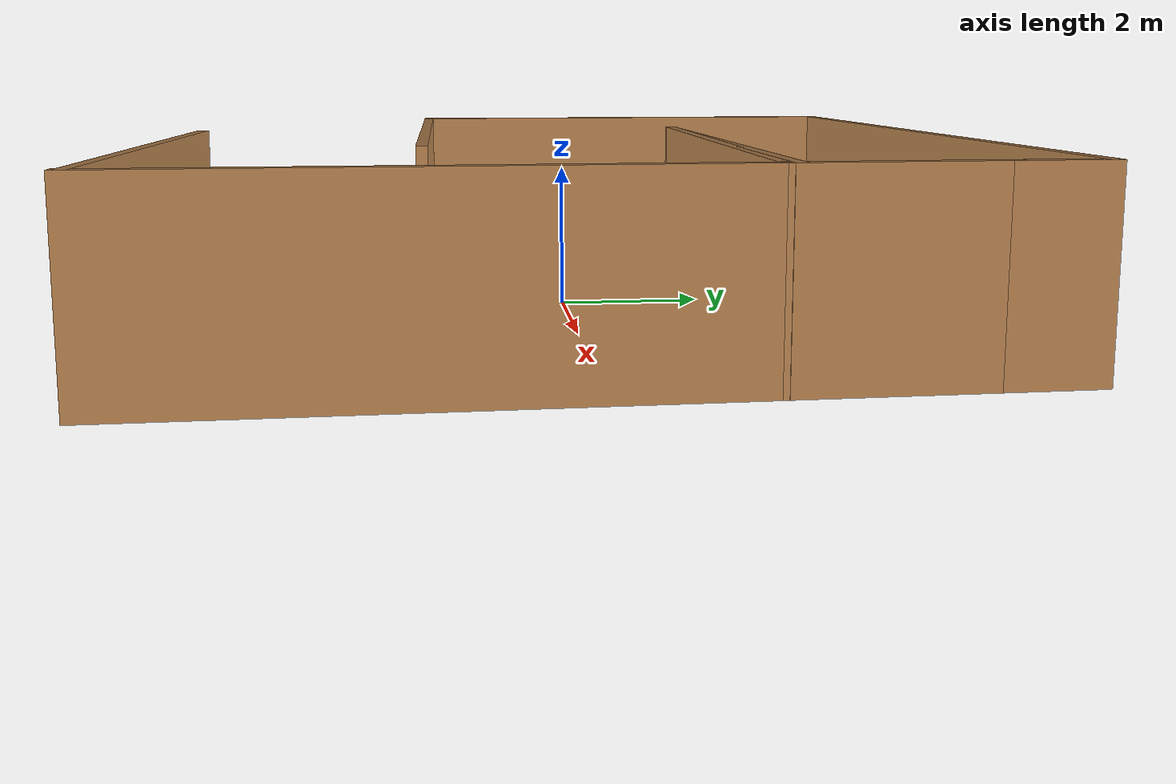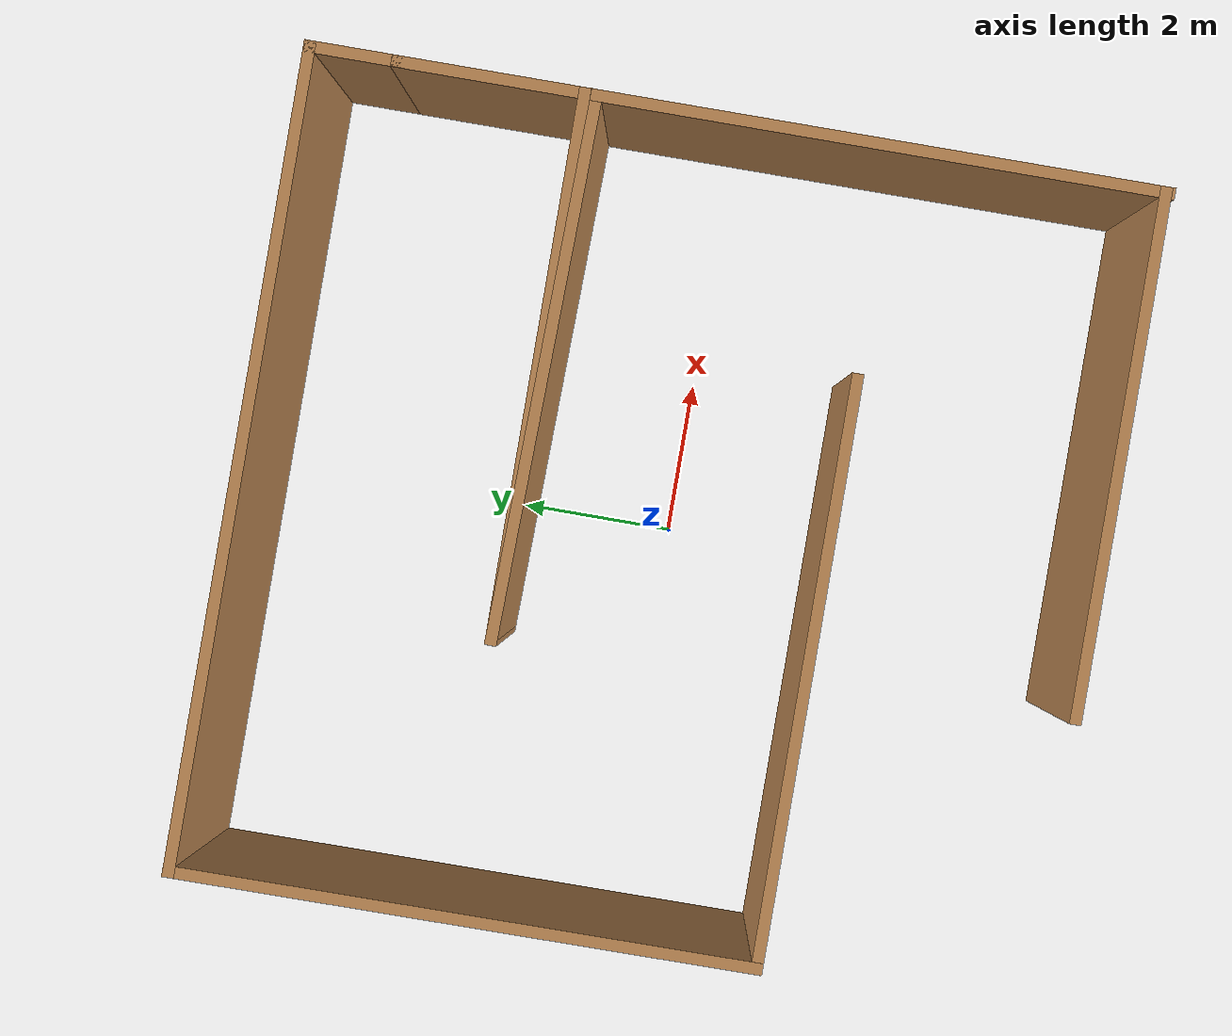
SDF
<?xml version='1.0'?>
<sdf version='1.6'>
  <model name='arxiv2'>
    <model name='arxiv_maze.world'>
      <pose frame=''>0 2e-06 0 0 -0 0</pose>
      <link name='Wall_0'>
        <collision name='Wall_0_Collision'>
          <geometry>
            <box>
              <size>6.75 0.15 2.5</size>
            </box>
          </geometry>
          <pose frame=''>0 0 1.25 0 -0 0</pose>
        </collision>
        <visual name='Wall_0_Visual'>
          <pose frame=''>0 0 1.25 0 -0 0</pose>
          <geometry>
            <box>
              <size>6.75 0.15 2.5</size>
            </box>
          </geometry>
          <material>
            <script>
              <uri>file://media/materials/scripts/gazebo.material</uri>
              <name>Gazebo/Wood</name>
            </script>
            <ambient>1 1 1 1</ambient>
          </material>
          <meta>
            <layer>0</layer>
          </meta>
        </visual>
        <pose frame=''>1.8746 -5.35144 0 0 -0 0</pose>
      </link>
      <link name='Wall_1'>
        <collision name='Wall_1_Collision'>
          <geometry>
            <box>
              <size>7.33 0.15 2.5</size>
            </box>
          </geometry>
          <pose frame=''>0 0 1.25 0 -0 0</pose>
        </collision>
        <visual name='Wall_1_Visual'>
          <pose frame=''>0 0 1.25 0 -0 0</pose>
          <geometry>
            <box>
              <size>7.33 0.15 2.5</size>
            </box>
          </geometry>
          <material>
            <script>
              <uri>file://media/materials/scripts/gazebo.material</uri>
              <name>Gazebo/Wood</name>
            </script>
            <ambient>1 1 1 1</ambient>
          </material>
          <meta>
            <layer>0</layer>
          </meta>
        </visual>
        <pose frame=''>5.1746 -1.80144 0 0 -0 1.5708</pose>
      </link>
      <link name='Wall_2'>
        <collision name='Wall_2_Collision'>
          <geometry>
            <box>
              <size>7.00214 0.15 2.5</size>
            </box>
          </geometry>
          <pose frame=''>0 0 1.25 0 -0 0</pose>
        </collision>
        <visual name='Wall_2_Visual'>
          <pose frame=''>0 0 1.25 0 -0 0</pose>
          <geometry>
            <box>
              <size>7.00214 0.15 2.5</size>
            </box>
          </geometry>
          <material>
            <script>
              <uri>file://media/materials/scripts/gazebo.material</uri>
              <name>Gazebo/Wood</name>
            </script>
            <ambient>1 1 1 1</ambient>
          </material>
          <meta>
            <layer>0</layer>
          </meta>
        </visual>
        <pose frame=''>1.74938 1.86472 0 0 -0 3.11936</pose>
      </link>
      <link name='Wall_3'>
        <collision name='Wall_3_Collision'>
          <geometry>
            <box>
              <size>7 0.15 2.5</size>
            </box>
          </geometry>
          <pose frame=''>0 0 1.25 0 -0 0</pose>
        </collision>
        <visual name='Wall_3_Visual'>
          <pose frame=''>0 0 1.25 0 -0 0</pose>
          <geometry>
            <box>
              <size>7 0.15 2.5</size>
            </box>
          </geometry>
          <material>
            <script>
              <uri>file://media/materials/scripts/gazebo.material</uri>
              <name>Gazebo/Wood</name>
            </script>
            <ambient>1 1 1 1</ambient>
          </material>
          <meta>
            <layer>0</layer>
          </meta>
        </visual>
        <pose frame=''>1.74916 1.94088 0 0 -0 0</pose>
      </link>
      <link name='Wall_4'>
        <collision name='Wall_4_Collision'>
          <geometry>
            <box>
              <size>2.5 0.15 2.5</size>
            </box>
          </geometry>
          <pose frame=''>0 0 1.25 0 -0 0</pose>
        </collision>
        <visual name='Wall_4_Visual'>
          <pose frame=''>0 0 1.25 0 -0 0</pose>
          <geometry>
            <box>
              <size>2.5 0.15 2.5</size>
            </box>
          </geometry>
          <material>
            <script>
              <uri>file://media/materials/scripts/gazebo.material</uri>
              <name>Gazebo/Wood</name>
            </script>
            <ambient>1 1 1 1</ambient>
          </material>
          <meta>
            <layer>0</layer>
          </meta>
        </visual>
        <pose frame=''>5.17416 3.11588 0 0 -0 1.5708</pose>
      </link>
      <link name='Wall_5'>
        <collision name='Wall_5_Collision'>
          <geometry>
            <box>
              <size>1.25 0.15 2.5</size>
            </box>
          </geometry>
          <pose frame=''>0 0 1.25 0 -0 0</pose>
        </collision>
        <visual name='Wall_5_Visual'>
          <pose frame=''>0 0 1.25 0 -0 0</pose>
          <geometry>
            <box>
              <size>1.25 0.15 2.5</size>
            </box>
          </geometry>
          <material>
            <script>
              <uri>file://media/materials/scripts/gazebo.material</uri>
              <name>Gazebo/Wood</name>
            </script>
            <ambient>1 1 1 1</ambient>
          </material>
          <meta>
            <layer>0</layer>
          </meta>
        </visual>
        <pose frame=''>5.17416 4.84088 0 0 -0 1.5708</pose>
      </link>
      <link name='Wall_6'>
        <collision name='Wall_6_Collision'>
          <geometry>
            <box>
              <size>10.5 0.15 2.5</size>
            </box>
          </geometry>
          <pose frame=''>0 0 1.25 0 -0 0</pose>
        </collision>
        <visual name='Wall_6_Visual'>
          <pose frame=''>0 0 1.25 0 -0 0</pose>
          <geometry>
            <box>
              <size>10.5 0.15 2.5</size>
            </box>
          </geometry>
          <material>
            <script>
              <uri>file://media/materials/scripts/gazebo.material</uri>
              <name>Gazebo/Wood</name>
            </script>
            <ambient>1 1 1 1</ambient>
          </material>
          <meta>
            <layer>0</layer>
          </meta>
        </visual>
        <pose frame=''>-0.000844 5.39088 0 0 -0 3.14159</pose>
      </link>
      <link name='Wall_7'>
        <collision name='Wall_7_Collision'>
          <geometry>
            <box>
              <size>7.52043 0.15 2.5</size>
            </box>
          </geometry>
          <pose frame=''>0 0 1.25 0 -0 0</pose>
        </collision>
        <visual name='Wall_7_Visual'>
          <pose frame=''>0 0 1.25 0 -0 0</pose>
          <geometry>
            <box>
              <size>7.52043 0.15 2.5</size>
            </box>
          </geometry>
          <material>
            <script>
              <uri>file://media/materials/scripts/gazebo.material</uri>
              <name>Gazebo/Wood</name>
            </script>
            <ambient>1 1 1 1</ambient>
          </material>
          <meta>
            <layer>0</layer>
          </meta>
        </visual>
        <pose frame=''>-5.15584 1.70588 0 0 -0 -1.56537</pose>
      </link>
      <link name='Wall_8'>
        <collision name='Wall_8_Collision'>
          <geometry>
            <box>
              <size>7.5 0.15 2.5</size>
            </box>
          </geometry>
          <pose frame=''>0 0 1.25 0 -0 0</pose>
        </collision>
        <visual name='Wall_8_Visual'>
          <pose frame=''>0 0 1.25 0 -0 0</pose>
          <geometry>
            <box>
              <size>7.5 0.15 2.5</size>
            </box>
          </geometry>
          <material>
            <script>
              <uri>file://media/materials/scripts/gazebo.material</uri>
              <name>Gazebo/Wood</name>
            </script>
            <ambient>1 1 1 1</ambient>
          </material>
          <meta>
            <layer>0</layer>
          </meta>
        </visual>
        <pose frame=''>-1.42084 -1.97912 0 0 -0 0</pose>
      </link>
      <static>1</static>
    </model>
    <static>1</static>
    <allow_auto_disable>1</allow_auto_disable>
  </model>
</sdf>
